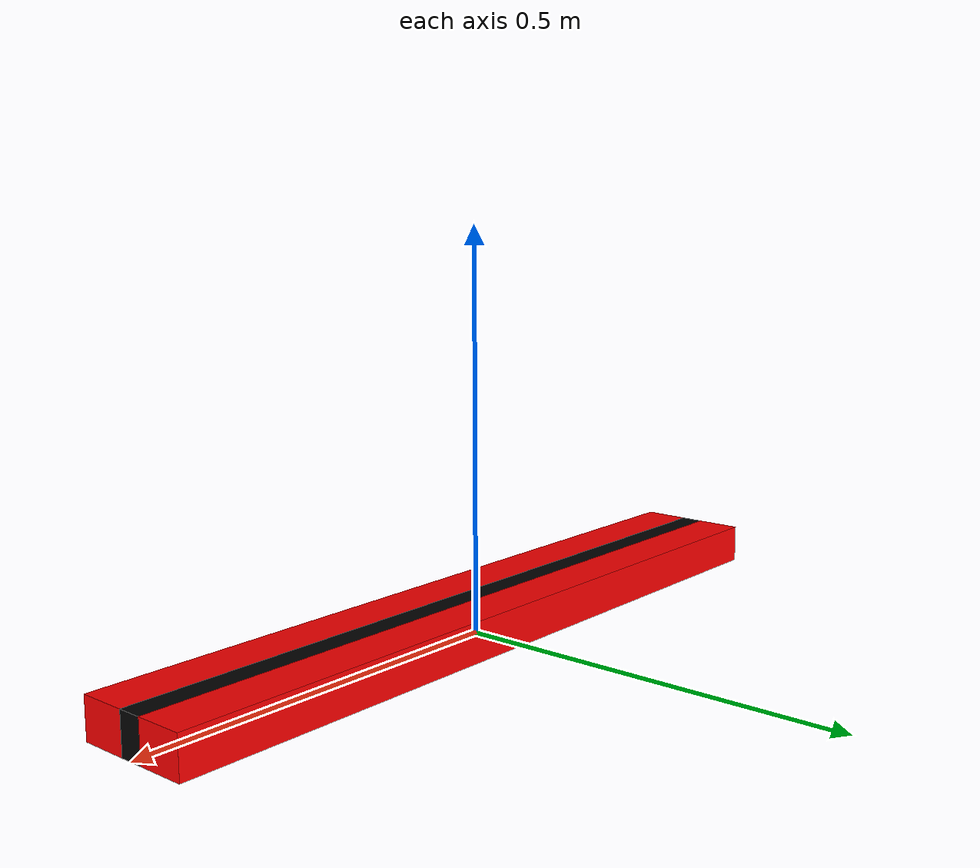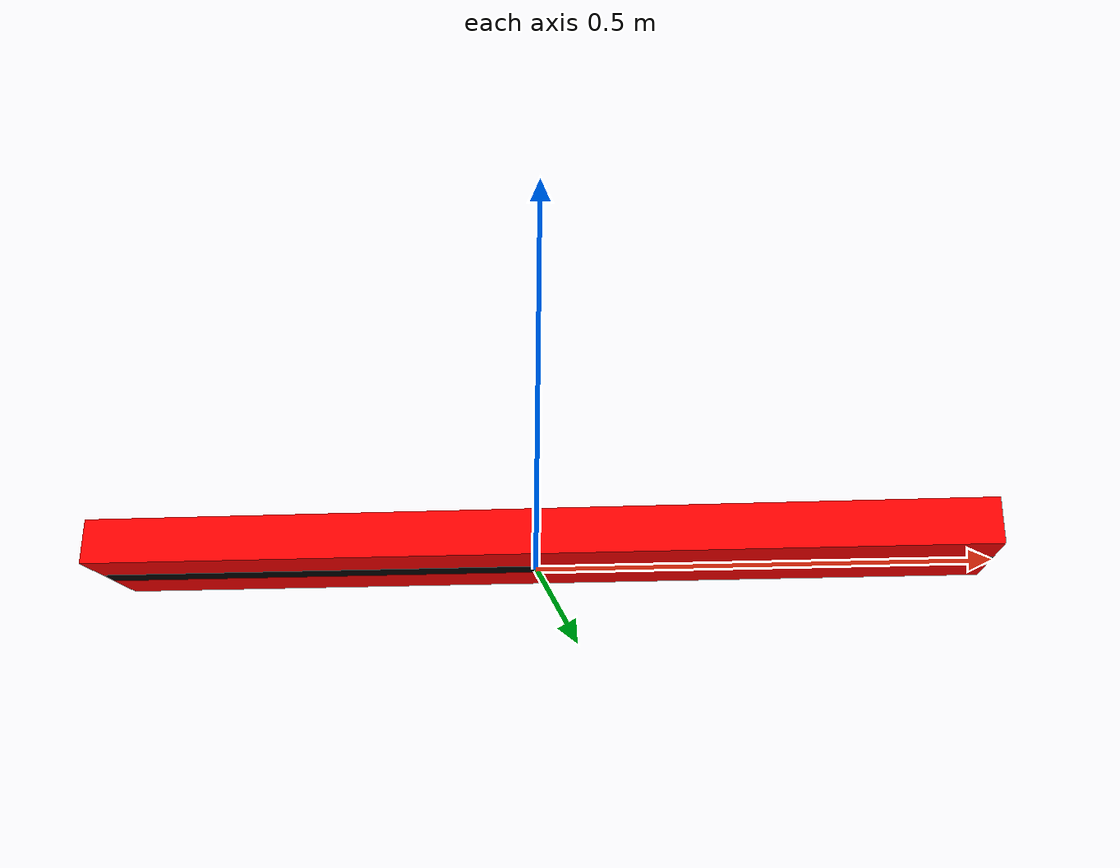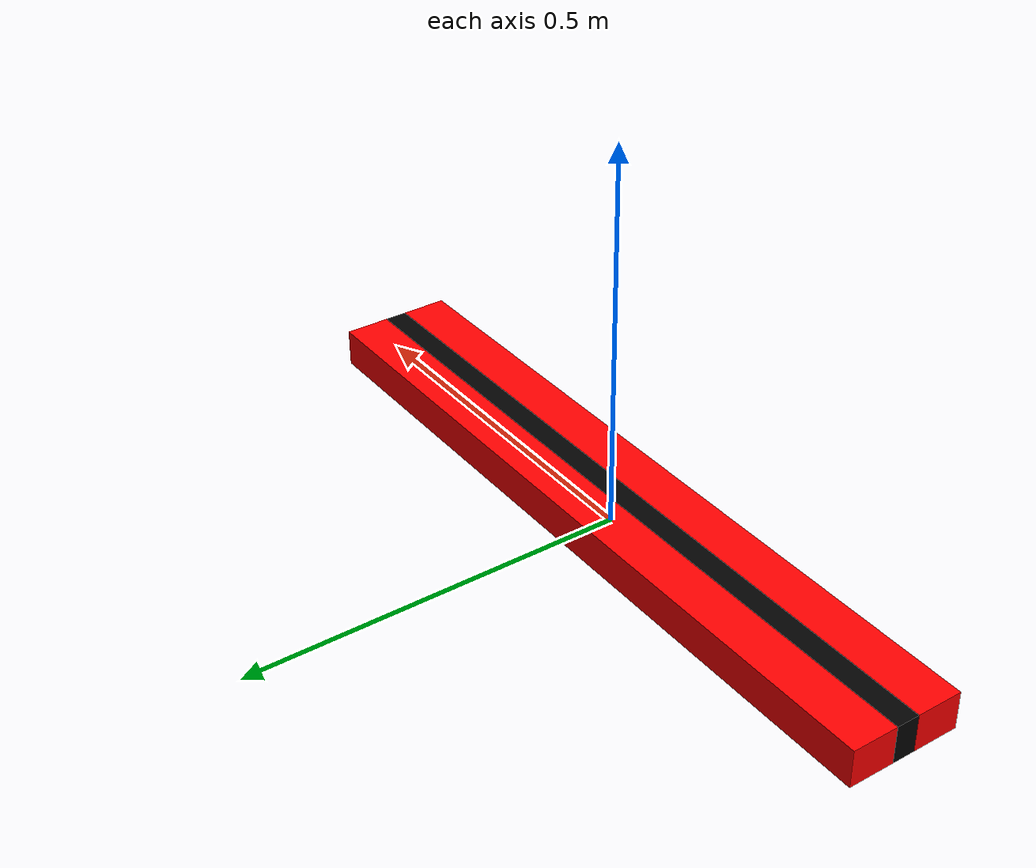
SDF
<?xml version="1.0"?>
<sdf version="1.7">
  <model name="teknofest_pipe">
    <static>true</static>
    <link name="line">
      <visual name="red_port_band">
        <pose>0 -0.045 0.025 0 0 0</pose>
        <geometry>
          <box><size>1.0 0.06 0.05</size></box>
        </geometry>
        <material>
          <ambient>0.8 0.0 0.0 1</ambient>
          <diffuse>1.0 0.0 0.0 1</diffuse>
          <specular>0.05 0.05 0.05 1</specular>
        </material>
      </visual>

      <visual name="black_center_band">
        <pose>0 0 0.025 0 0 0</pose>
        <geometry>
          <box><size>1.0 0.03 0.05</size></box>
        </geometry>
        <material>
          <ambient>0.005 0.005 0.005 1</ambient>
          <diffuse>0.01 0.01 0.01 1</diffuse>
          <specular>0 0 0 1</specular>
        </material>
      </visual>

      <visual name="red_starboard_band">
        <pose>0 0.045 0.025 0 0 0</pose>
        <geometry>
          <box><size>1.0 0.06 0.05</size></box>
        </geometry>
        <material>
          <ambient>0.8 0.0 0.0 1</ambient>
          <diffuse>1.0 0.0 0.0 1</diffuse>
          <specular>0.05 0.05 0.05 1</specular>
        </material>
      </visual>

      <collision name="line_collision">
        <pose>0 0 0.025 0 0 0</pose>
        <geometry>
          <box><size>1.0 0.15 0.05</size></box>
        </geometry>
      </collision>
    </link>
  </model>
</sdf>
